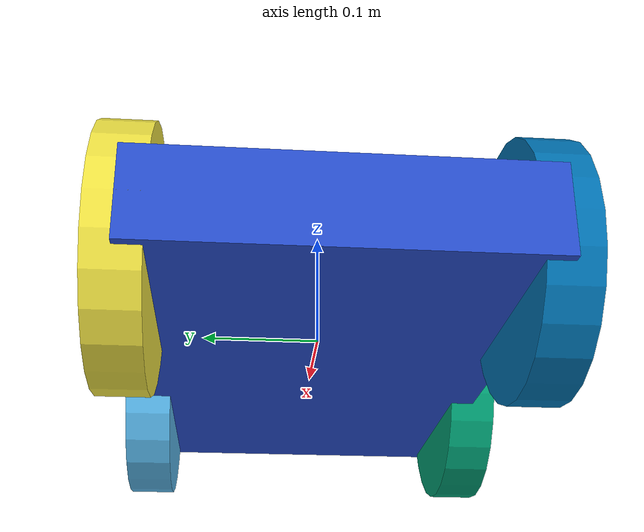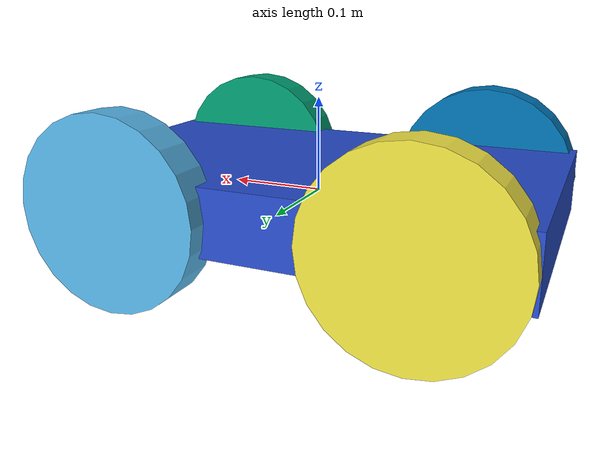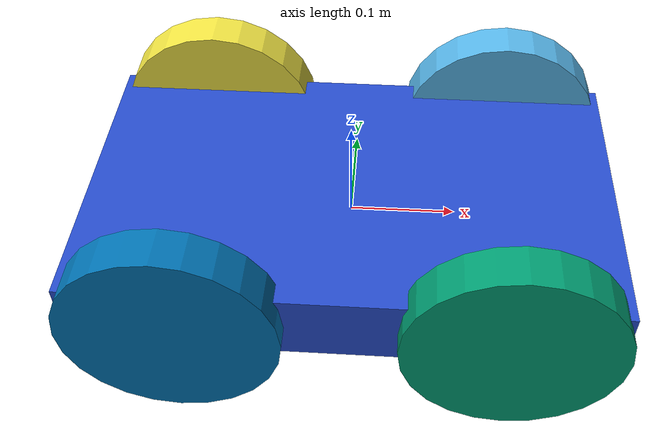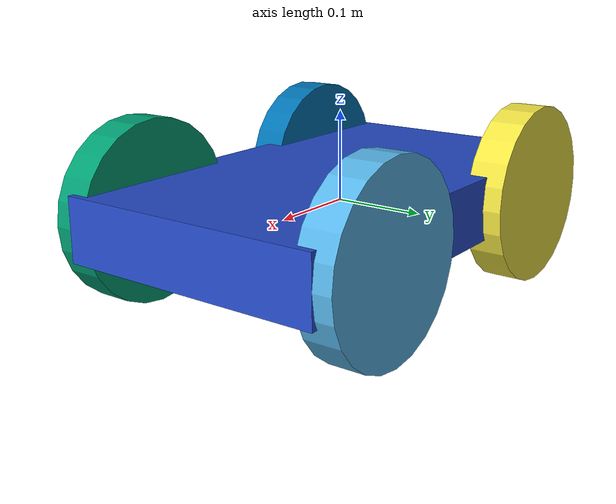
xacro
<?xml version="1.0" ?>

<robot name="skid_steer_bot" xmlns:xacro="http://www.ros.org/wiki/xacro">
  <gazebo reference="link_chassis">
    <material>Gazebo/Orange</material>
  </gazebo>
  <gazebo reference="link_left_wheel">
    <material>Gazebo/Blue</material>
  </gazebo>
  <gazebo reference="link_right_wheel">
    <material>Gazebo/Blue</material>
  </gazebo>

  <gazebo>
      <plugin name="skid_steer_drive_controller" filename="libgazebo_ros_skid_steer_drive.so">
      <updateRate>100.0</updateRate>
      <robotNamespace>/</robotNamespace>
      <leftFrontJoint>front_left_wheel_joint</leftFrontJoint>
      <rightFrontJoint>front_right_wheel_joint</rightFrontJoint>
      <leftRearJoint>back_left_wheel_joint</leftRearJoint>
      <rightRearJoint>back_right_wheel_joint</rightRearJoint>
      <wheelSeparation>0.3</wheelSeparation>
      <wheelDiameter>0.2</wheelDiameter>
      <robotBaseFrame>base_link</robotBaseFrame>
      <torque>20</torque>
      <topicName>cmd_vel</topicName>
      <broadcastTF>false</broadcastTF>
    </plugin>
  </gazebo>

  <xacro:property name="wheel_radius" value="0.2"/>

  <xacro:macro name="wheel_inertial">
    <inertial>
      <mass value="0.2"/>
      <origin rpy="0 1.5707 1.5707" xyz="0 0 0"/>
      <inertia ixx="0.000526666666667" ixy="0" ixz="0" iyy="0.000526666666667"
        iyz="0" izz="0.001"/>
    </inertial>
  </xacro:macro>

  <xacro:macro name="wheel_collision_values">
    <origin rpy="0 1.5707 1.5707" xyz="0 0 0"/>
    <geometry>
      <cylinder length="0.04" radius="0.1"/>
    </geometry>
  </xacro:macro>

  <xacro:macro name="wheel_visual_values">
    <origin rpy="0 1.5707 1.5707" xyz="0 0 0"/>
    <geometry>
      <cylinder length="0.04" radius="0.1"/>
    </geometry>
  </xacro:macro>

  <link name="link_chassis">
    <!-- pose and inertial -->
    <pose>0 0 0.1 0 0 0</pose>
    <inertial>
      <mass value="5"/>
      <origin rpy="0 0 0" xyz="0 0 0.1"/>
      <inertia ixx="0.0395416666667" ixy="0" ixz="0" iyy="0.106208333333"
        iyz="0" izz="0.106208333333"/>
    </inertial>
    <!-- body -->
    <collision name="collision_chassis">
      <geometry>
        <box size="0.5 0.3 0.07"/>
      </geometry>
    </collision>
    <visual>
      <origin rpy="0 0 0" xyz="0 0 0"/>
      <geometry>
        <box size="0.5 0.3 0.07"/>
      </geometry>
      <material name="blue"/>
    </visual>
  </link>

  <!-- defining wheels -->

  <link name="link_front_right_wheel">
    <inertial>
      <mass value="0.2"/>
      <origin rpy="0 1.5707 1.5707" xyz="0 0 0"/>
      <inertia ixx="0.000526666666667" ixy="0" ixz="0" iyy="0.000526666666667"
        iyz="0" izz="0.001"/>
    </inertial>
    <collision name="link_front_right_wheel_collision">
      <origin rpy="0 1.5707 1.5707" xyz="0 0 0"/>
    <geometry>
      <cylinder length="0.04" radius="0.1"/>
    </geometry>
    </collision>
    <visual name="link_front_right_wheel_visual">
      <origin rpy="0 1.5707 1.5707" xyz="0 0 0"/>
    <geometry>
      <cylinder length="0.04" radius="0.1"/>
    </geometry>
    </visual>
  </link>

  <link name="link_front_left_wheel">
    <inertial>
      <mass value="0.2"/>
      <origin rpy="0 1.5707 1.5707" xyz="0 0 0"/>
      <inertia ixx="0.000526666666667" ixy="0" ixz="0" iyy="0.000526666666667"
        iyz="0" izz="0.001"/>
    </inertial>
    <collision name="link_front_left_wheel_collision">
      <origin rpy="0 1.5707 1.5707" xyz="0 0 0"/>
    <geometry>
      <cylinder length="0.04" radius="0.1"/>
    </geometry>
    </collision>
    <visual name="link_front_left_wheel_visual">
      <origin rpy="0 1.5707 1.5707" xyz="0 0 0"/>
    <geometry>
      <cylinder length="0.04" radius="0.1"/>
    </geometry>
    </visual>
  </link>

  <link name="link_back_right_wheel">
    <inertial>
      <mass value="0.2"/>
      <origin rpy="0 1.5707 1.5707" xyz="0 0 0"/>
      <inertia ixx="0.000526666666667" ixy="0" ixz="0" iyy="0.000526666666667"
        iyz="0" izz="0.001"/>
    </inertial>
    <collision name="link_back_right_wheel_collision">
      <origin rpy="0 1.5707 1.5707" xyz="0 0 0"/>
    <geometry>
      <cylinder length="0.04" radius="0.1"/>
    </geometry>
    </collision>
    <visual name="link_back_right_wheel_visual">
      <origin rpy="0 1.5707 1.5707" xyz="0 0 0"/>
    <geometry>
      <cylinder length="0.04" radius="0.1"/>
    </geometry>
    </visual>
  </link>

  <link name="link_back_left_wheel">
    <inertial>
      <mass value="0.2"/>
      <origin rpy="0 1.5707 1.5707" xyz="0 0 0"/>
      <inertia ixx="0.000526666666667" ixy="0" ixz="0" iyy="0.000526666666667"
        iyz="0" izz="0.001"/>
    </inertial>
    <collision name="link_back_left_wheel_collision">
      <origin rpy="0 1.5707 1.5707" xyz="0 0 0"/>
    <geometry>
      <cylinder length="0.04" radius="0.1"/>
    </geometry>
    </collision>
    <visual name="link_back_left_wheel_visual">
      <origin rpy="0 1.5707 1.5707" xyz="0 0 0"/>
    <geometry>
      <cylinder length="0.04" radius="0.1"/>
    </geometry>
    </visual>
  </link>

  <!-- defining joints -->

  <joint name="front_right_wheel_joint" type="continuous">
    <origin rpy="0 0 0" xyz="0.15 0.15 0"/>
    <child link="link_front_right_wheel"/>
    <parent link="link_chassis"/>
    <axis rpy="0 0 0" xyz="0 1 0"/>
    <limit effort="100" velocity="1"/>
    <joint_properties damping="1.0" friction="1.0"/>
  </joint>

  <joint name="front_left_wheel_joint" type="continuous">
    <origin rpy="0 0 0" xyz="0.15 -0.15 0"/>
    <child link="link_front_left_wheel"/>
    <parent link="link_chassis"/>
    <axis rpy="0 0 0" xyz="0 1 0"/>
    <limit effort="100" velocity="1"/>
    <joint_properties damping="1.0" friction="1.0"/>
  </joint>

  <joint name="back_right_wheel_joint" type="continuous">
    <origin rpy="0 0 0" xyz="-0.15 0.15 0"/>
    <child link="link_back_right_wheel"/>
    <parent link="link_chassis"/>
    <axis rpy="0 0 0" xyz="0 1 0"/>
    <limit effort="100" velocity="1"/>
    <joint_properties damping="1.0" friction="1.0"/>
  </joint>

  <joint name="back_left_wheel_joint" type="continuous">
    <origin rpy="0 0 0" xyz="-0.15 -0.15 0"/>
    <child link="link_back_left_wheel"/>
    <parent link="link_chassis"/>
    <axis rpy="0 0 0" xyz="0 1 0"/>
    <limit effort="100" velocity="1"/>
    <joint_properties damping="1.0" friction="1.0"/>
  </joint>

</robot>
